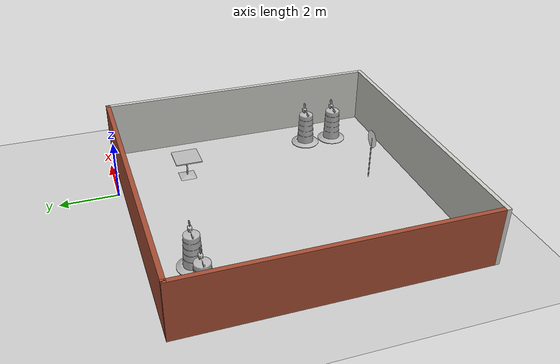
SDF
<sdf version="1.6">
 <world name="default">
  <light name="sun" type="directional">
   <pose>0 0 10 0 -0 0</pose>
   <diffuse>0.8 0.8 0.8 1</diffuse>
   <specular>0.2 0.2 0.2 1</specular>
   <attenuation>
    <range>1000</range>
    <constant>0.9</constant>
    <linear>0.01</linear>
    <quadratic>0.001</quadratic>
   </attenuation>
   <direction>-0.5 0.1 -0.9</direction>
  </light>
  <model name="ground_plane">
   <static>1</static>
   <link name="link">
    <collision name="collision">
     <geometry><plane><normal>0 0 1</normal><size>100 100</size></plane></geometry>
     <surface>
      <contact><collide_bitmask>65535</collide_bitmask></contact>
      <friction><ode><mu>100</mu><mu2>50</mu2></ode></friction>
     </surface>
    </collision>
    <visual name="visual">
     <cast_shadows>0</cast_shadows>
     <geometry><plane><normal>0 0 1</normal><size>100 100</size></plane></geometry>
     <material>
      <script><uri>file://media/materials/scripts/gazebo.material</uri><name>Gazebo/Grey</name></script>
     </material>
    </visual>
   </link>
  </model>
  <gravity>0 0 -9.8</gravity>
  <magnetic_field>6e-06 2.3e-05 -4.2e-05</magnetic_field>
  <atmosphere type="adiabatic"/>
  <physics name="default_physics" default="0" type="ode">
   <max_step_size>0.001</max_step_size>
   <real_time_factor>1</real_time_factor>
   <real_time_update_rate>1000</real_time_update_rate>
  </physics>
  <scene><ambient>0.4 0.4 0.4 1</ambient><background>0.7 0.7 0.7 1</background><shadows>1</shadows></scene>
  <spherical_coordinates>
   <surface_model>EARTH_WGS84</surface_model>
   <latitude_deg>0</latitude_deg>
   <longitude_deg>0</longitude_deg>
   <elevation>0</elevation>
   <heading_deg>0</heading_deg>
  </spherical_coordinates>
  <model name="small_room_new">
   <pose>-2.139 -5.149 0 0 -0 0</pose>
   <link name="Wall_0">
    <collision name="Wall_0_Collision">
     <geometry><box><size>10 0.15 2</size></box></geometry>
     <pose>0 0 1 0 -0 0</pose>
    </collision>
    <visual name="Wall_0_Visual">
     <pose>0 0 1 0 -0 0</pose>
     <geometry><box><size>10 0.15 2</size></box></geometry>
     <material>
      <script><uri>file://media/materials/scripts/gazebo.material</uri><name>Gazebo/Bricks</name></script>
      <ambient>1 1 1 1</ambient>
     </material>
     <meta><layer>0</layer></meta>
    </visual>
    <pose>0 4.925 0 0 -0 0</pose>
   </link>
   <link name="Wall_10">
    <collision name="Wall_10_Collision">
     <geometry><box><size>10 0.15 2</size></box></geometry>
     <pose>0 0 1 0 -0 0</pose>
    </collision>
    <visual name="Wall_10_Visual">
     <pose>0 0 1 0 -0 0</pose>
     <geometry><box><size>10 0.15 2</size></box></geometry>
     <material>
      <script><uri>file://media/materials/scripts/gazebo.material</uri><name>Gazebo/CeilingTiled</name></script>
      <ambient>1 1 1 1</ambient>
     </material>
     <meta><layer>0</layer></meta>
    </visual>
    <pose>0 -4.925 0 0 -0 3.14159</pose>
   </link>
   <link name="Wall_11">
    <collision name="Wall_11_Collision">
     <geometry><box><size>10 0.15 2</size></box></geometry>
     <pose>0 0 1 0 -0 0</pose>
    </collision>
    <visual name="Wall_11_Visual">
     <pose>0 0 1 0 -0 0</pose>
     <geometry><box><size>10 0.15 2</size></box></geometry>
     <material>
      <script><uri>file://media/materials/scripts/gazebo.material</uri><name>Gazebo/Bricks</name></script>
      <ambient>1 1 1 1</ambient>
     </material>
     <meta><layer>0</layer></meta>
    </visual>
    <pose>-4.925 -0 0 0 -0 1.5708</pose>
   </link>
   <link name="Wall_8">
    <collision name="Wall_8_Collision">
     <geometry><box><size>10 0.15 2</size></box></geometry>
     <pose>0 0 1 0 -0 0</pose>
    </collision>
    <visual name="Wall_8_Visual">
     <pose>0 0 1 0 -0 0</pose>
     <geometry><box><size>10 0.15 2</size></box></geometry>
     <material>
      <script><uri>file://media/materials/scripts/gazebo.material</uri><name>Gazebo/CeilingTiled</name></script>
      <ambient>1 1 1 1</ambient>
     </material>
     <meta><layer>0</layer></meta>
    </visual>
    <pose>4.925 -0 0 0 -0 -1.5708</pose>
   </link>
   <static>1</static>
  </model>
  <model name="Construction Barrel">
   <link name="link">
    <inertial>
     <pose>0 0 0.4 0 -0 0</pose>
     <mass>500</mass>
     <inertia><ixx>51.2096</ixx><iyy>51.2096</iyy><izz>25</izz><ixy>0</ixy><ixz>0</ixz><iyz>0</iyz></inertia>
    </inertial>
    <collision name="collision">
     <geometry><mesh><uri>model://construction_barrel/meshes/construction_barrel.dae</uri></mesh></geometry>
    </collision>
    <visual name="visual">
     <geometry><mesh><uri>model://construction_barrel/meshes/construction_barrel.dae</uri></mesh></geometry>
    </visual>
   </link>
   <pose>-5.70188 -1.51621 -1e-06 0 5e-06 -1e-05</pose>
  </model>
  <model name="Construction Barrel_0">
   <link name="link">
    <inertial>
     <pose>0 0 0.4 0 -0 0</pose>
     <mass>500</mass>
     <inertia><ixx>51.2096</ixx><iyy>51.2096</iyy><izz>25</izz><ixy>0</ixy><ixz>0</ixz><iyz>0</iyz></inertia>
    </inertial>
    <collision name="collision">
     <geometry><mesh><uri>model://construction_barrel/meshes/construction_barrel.dae</uri></mesh></geometry>
    </collision>
    <visual name="visual">
     <geometry><mesh><uri>model://construction_barrel/meshes/construction_barrel.dae</uri></mesh></geometry>
    </visual>
   </link>
   <pose>-4.41046 -1.51787 -2e-06 -0 7e-06 -8e-06</pose>
  </model>
  <model name="Construction Barrel_1">
   <link name="link">
    <inertial>
     <pose>0 0 0.4 0 -0 0</pose>
     <mass>500</mass>
     <inertia><ixx>51.2096</ixx><iyy>51.2096</iyy><izz>25</izz><ixy>0</ixy><ixz>0</ixz><iyz>0</iyz></inertia>
    </inertial>
    <collision name="collision">
     <geometry><mesh><uri>model://construction_barrel/meshes/construction_barrel.dae</uri></mesh></geometry>
    </collision>
    <visual name="visual">
     <geometry><mesh><uri>model://construction_barrel/meshes/construction_barrel.dae</uri></mesh></geometry>
    </visual>
   </link>
   <pose>1.46194 -7.33224 -1e-06 3e-06 1e-05 -7e-06</pose>
  </model>
  <model name="Construction Barrel_2">
   <link name="link">
    <inertial>
     <pose>0 0 0.4 0 -0 0</pose>
     <mass>500</mass>
     <inertia><ixx>51.2096</ixx><iyy>51.2096</iyy><izz>25</izz><ixy>0</ixy><ixz>0</ixz><iyz>0</iyz></inertia>
    </inertial>
    <collision name="collision">
     <geometry><mesh><uri>model://construction_barrel/meshes/construction_barrel.dae</uri></mesh></geometry>
    </collision>
    <visual name="visual">
     <geometry><mesh><uri>model://construction_barrel/meshes/construction_barrel.dae</uri></mesh></geometry>
    </visual>
   </link>
   <pose>1.45587 -8.40234 1e-06 2e-06 3e-06 -6e-06</pose>
  </model>
  <model name="cafe_table">
   <static>1</static>
   <link name="link">
    <collision name="surface">
     <pose>0 0 0.755 0 -0 0</pose>
     <geometry><box><size>0.913 0.913 0.04</size></box></geometry>
    </collision>
    <collision name="column">
     <pose>0 0 0.37 0 -0 0</pose>
     <geometry><box><size>0.042 0.042 0.74</size></box></geometry>
    </collision>
    <collision name="base">
     <pose>0 0 0.02 0 -0 0</pose>
     <geometry><box><size>0.56 0.56 0.04</size></box></geometry>
    </collision>
    <visual name="visual">
     <geometry><mesh><uri>model://cafe_table/meshes/cafe_table.dae</uri></mesh></geometry>
    </visual>
   </link>
   <pose>0.501065 -2.48935 0 0 -0 0</pose>
  </model>
  <model name="Stop Sign">
   <static>1</static>
   <link name="link">
    <collision name="collision">
     <geometry><mesh><uri>model://stop_sign/meshes/stop_sign.dae</uri></mesh></geometry>
    </collision>
    <visual name="visual">
     <geometry><mesh><uri>model://stop_sign/meshes/stop_sign.dae</uri></mesh></geometry>
     <material>
      <script>
       <uri>model://stop_sign/materials/scripts</uri>
       <uri>model://stop_sign/materials/textures</uri>
       <name>StopSign/Diffuse</name>
      </script>
     </material>
    </visual>
   </link>
   <pose>-1.5526 -8.55324 0 0 -0 0</pose>
  </model>
 </world>
</sdf>
